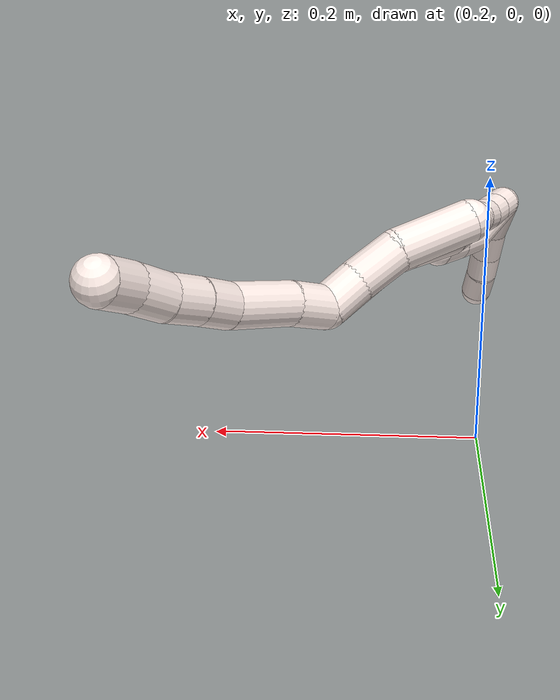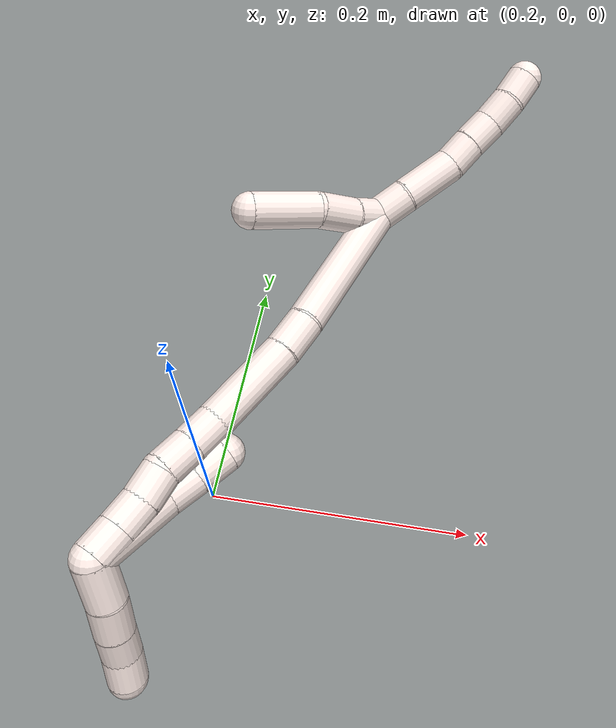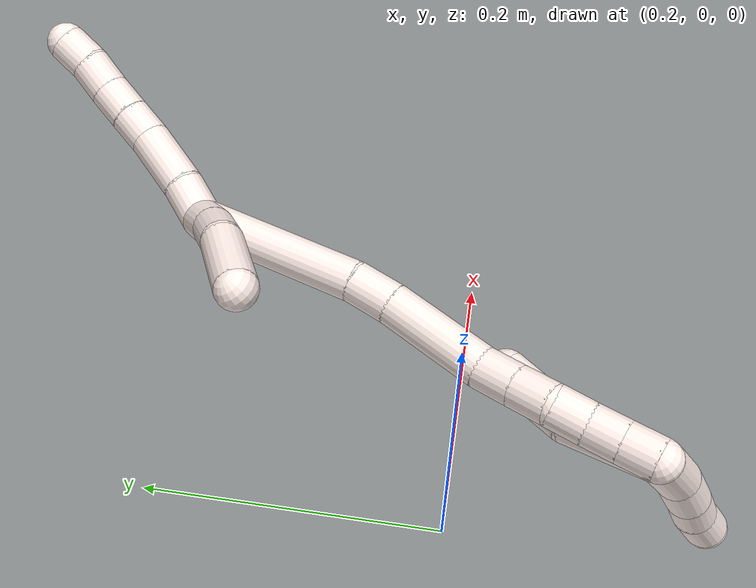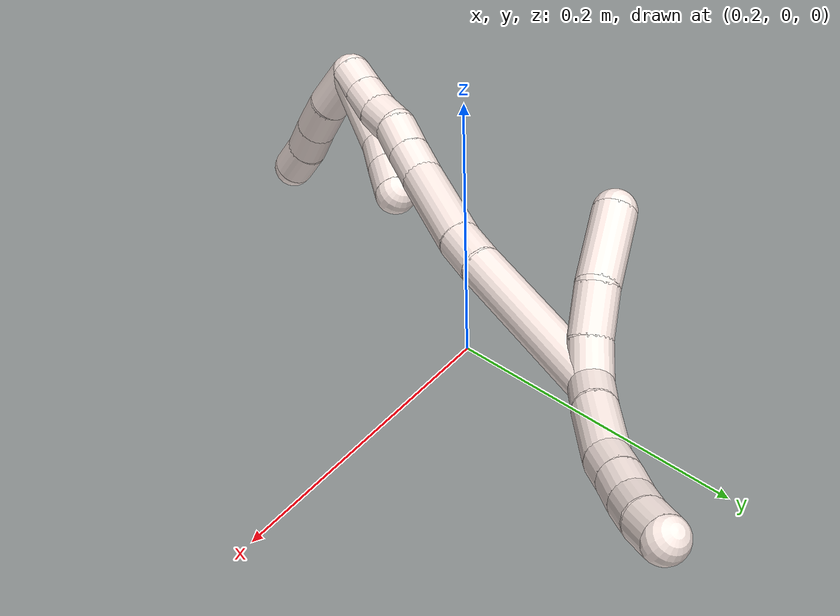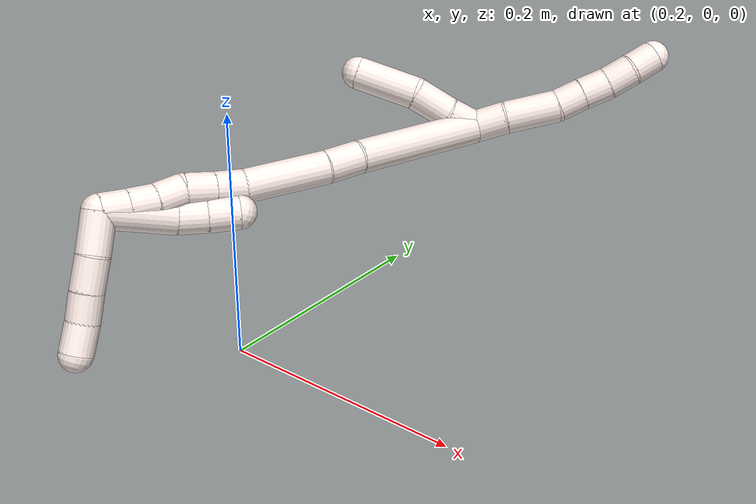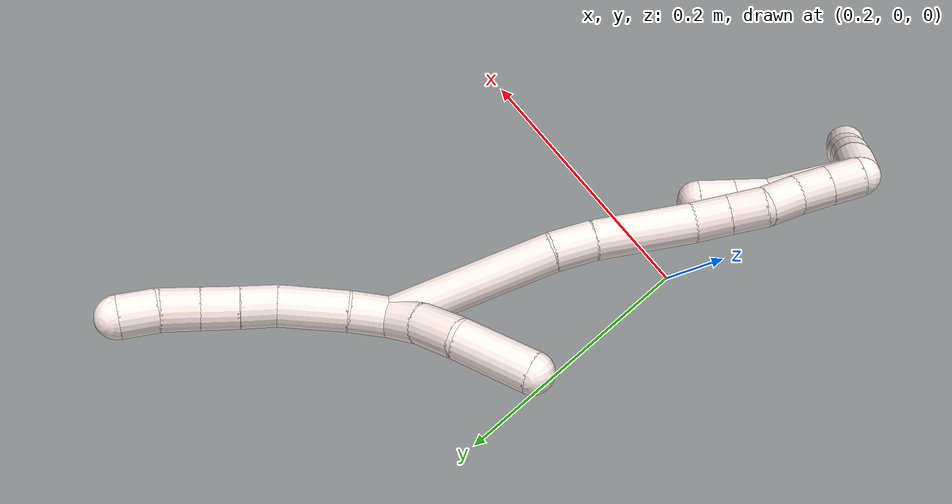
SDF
<sdf version="1.7">
 <world name="default">
  <model name="11">
   <static>0</static>
   <link name="11">
    <collision name="collision-cylinder-e_1_2_8">
     <pose>0.006764 0.008009 0.007009 -0.851843 0.56616 -0.262435</pose>
     <geometry><cylinder><radius>0.0125</radius><length>0.025221</length></cylinder></geometry>
     <surface>
      <friction><ode><mu>1.16</mu><mu2>1.16</mu2><slip1>0</slip1><slip2>0</slip2></ode></friction>
      <contact><ode><kp>1e+06</kp><kd>1</kd><max_vel>0</max_vel><min_depth>0.001</min_depth></ode></contact>
     </surface>
    </collision>
    <visual name="visual-cylinder-e_1_2_8">
     <pose>0.006764 0.008009 0.007009 -0.851843 0.56616 -0.262435</pose>
     <geometry><cylinder><radius>0.0125</radius><length>0.025221</length></cylinder></geometry>
     <material><ambient>1 0.933333 0.909804 1</ambient></material>
    </visual>
    <collision name="collision-cylinder-e_2_8_9">
     <pose>0.023169 0.030822 0.024243 -0.966411 0.491911 -0.261927</pose>
     <geometry><cylinder><radius>0.0125</radius><length>0.040825</length></cylinder></geometry>
     <surface>
      <friction><ode><mu>1.16</mu><mu2>1.16</mu2><slip1>0</slip1><slip2>0</slip2></ode></friction>
      <contact><ode><kp>1e+06</kp><kd>1</kd><max_vel>0</max_vel><min_depth>0.001</min_depth></ode></contact>
     </surface>
    </collision>
    <visual name="visual-cylinder-e_2_8_9">
     <pose>0.023169 0.030822 0.024243 -0.966411 0.491911 -0.261927</pose>
     <geometry><cylinder><radius>0.0125</radius><length>0.040825</length></cylinder></geometry>
     <material><ambient>1 0.933333 0.909804 1</ambient></material>
    </visual>
    <collision name="collision-cylinder-e_3_9_10">
     <pose>0.036617 0.052252 0.041544 -0.752399 0.374185 -0.149279</pose>
     <geometry><cylinder><radius>0.0125</radius><length>0.020828</length></cylinder></geometry>
     <surface>
      <friction><ode><mu>1.16</mu><mu2>1.16</mu2><slip1>0</slip1><slip2>0</slip2></ode></friction>
      <contact><ode><kp>1e+06</kp><kd>1</kd><max_vel>0</max_vel><min_depth>0.001</min_depth></ode></contact>
     </surface>
    </collision>
    <visual name="visual-cylinder-e_3_9_10">
     <pose>0.036617 0.052252 0.041544 -0.752399 0.374185 -0.149279</pose>
     <geometry><cylinder><radius>0.0125</radius><length>0.020828</length></cylinder></geometry>
     <material><ambient>1 0.933333 0.909804 1</ambient></material>
    </visual>
    <collision name="collision-cylinder-e_4_10_11">
     <pose>0.044531 0.065941 0.055532 -0.796359 0.393864 -0.167462</pose>
     <geometry><cylinder><radius>0.0125</radius><length>0.021407</length></cylinder></geometry>
     <surface>
      <friction><ode><mu>1.16</mu><mu2>1.16</mu2><slip1>0</slip1><slip2>0</slip2></ode></friction>
      <contact><ode><kp>1e+06</kp><kd>1</kd><max_vel>0</max_vel><min_depth>0.001</min_depth></ode></contact>
     </surface>
    </collision>
    <visual name="visual-cylinder-e_4_10_11">
     <pose>0.044531 0.065941 0.055532 -0.796359 0.393864 -0.167462</pose>
     <geometry><cylinder><radius>0.0125</radius><length>0.021407</length></cylinder></geometry>
     <material><ambient>1 0.933333 0.909804 1</ambient></material>
    </visual>
    <collision name="collision-cylinder-e_5_11_12">
     <pose>0.052802 0.079024 0.070391 -0.648107 0.39567 -0.134462</pose>
     <geometry><cylinder><radius>0.0125</radius><length>0.021605</length></cylinder></geometry>
     <surface>
      <friction><ode><mu>1.16</mu><mu2>1.16</mu2><slip1>0</slip1><slip2>0</slip2></ode></friction>
      <contact><ode><kp>1e+06</kp><kd>1</kd><max_vel>0</max_vel><min_depth>0.001</min_depth></ode></contact>
     </surface>
    </collision>
    <visual name="visual-cylinder-e_5_11_12">
     <pose>0.052802 0.079024 0.070391 -0.648107 0.39567 -0.134462</pose>
     <geometry><cylinder><radius>0.0125</radius><length>0.021605</length></cylinder></geometry>
     <material><ambient>1 0.933333 0.909804 1</ambient></material>
    </visual>
    <collision name="collision-cylinder-e_6_12_6">
     <pose>0.059415 0.091379 0.085752 -0.707305 0.245988 -0.091209</pose>
     <geometry><cylinder><radius>0.0125</radius><length>0.020114</length></cylinder></geometry>
     <surface>
      <friction><ode><mu>1.16</mu><mu2>1.16</mu2><slip1>0</slip1><slip2>0</slip2></ode></friction>
      <contact><ode><kp>1e+06</kp><kd>1</kd><max_vel>0</max_vel><min_depth>0.001</min_depth></ode></contact>
     </surface>
    </collision>
    <visual name="visual-cylinder-e_6_12_6">
     <pose>0.059415 0.091379 0.085752 -0.707305 0.245988 -0.091209</pose>
     <geometry><cylinder><radius>0.0125</radius><length>0.020114</length></cylinder></geometry>
     <material><ambient>1 0.933333 0.909804 1</ambient></material>
    </visual>
    <collision name="collision-cylinder-e_1_2_13">
     <pose>-0.004238 -0.010731 0.001837 1.40124 -0.371235 -0.314118</pose>
     <geometry><cylinder><radius>0.0125</radius><length>0.023365</length></cylinder></geometry>
     <surface>
      <friction><ode><mu>1.16</mu><mu2>1.16</mu2><slip1>0</slip1><slip2>0</slip2></ode></friction>
      <contact><ode><kp>1e+06</kp><kd>1</kd><max_vel>0</max_vel><min_depth>0.001</min_depth></ode></contact>
     </surface>
    </collision>
    <visual name="visual-cylinder-e_1_2_13">
     <pose>-0.004238 -0.010731 0.001837 1.40124 -0.371235 -0.314118</pose>
     <geometry><cylinder><radius>0.0125</radius><length>0.023365</length></cylinder></geometry>
     <material><ambient>1 0.933333 0.909804 1</ambient></material>
    </visual>
    <collision name="collision-cylinder-e_2_13_14">
     <pose>-0.015306 -0.033957 0.007157 1.299 -0.484663 -0.371119</pose>
     <geometry><cylinder><radius>0.0125</radius><length>0.029321</length></cylinder></geometry>
     <surface>
      <friction><ode><mu>1.16</mu><mu2>1.16</mu2><slip1>0</slip1><slip2>0</slip2></ode></friction>
      <contact><ode><kp>1e+06</kp><kd>1</kd><max_vel>0</max_vel><min_depth>0.001</min_depth></ode></contact>
     </surface>
    </collision>
    <visual name="visual-cylinder-e_2_13_14">
     <pose>-0.015306 -0.033957 0.007157 1.299 -0.484663 -0.371119</pose>
     <geometry><cylinder><radius>0.0125</radius><length>0.029321</length></cylinder></geometry>
     <material><ambient>1 0.933333 0.909804 1</ambient></material>
    </visual>
    <collision name="collision-cylinder-e_3_14_5">
     <pose>-0.036896 -0.064916 0.011607 1.51843 -0.673699 -0.64168</pose>
     <geometry><cylinder><radius>0.0125</radius><length>0.047314</length></cylinder></geometry>
     <surface>
      <friction><ode><mu>1.16</mu><mu2>1.16</mu2><slip1>0</slip1><slip2>0</slip2></ode></friction>
      <contact><ode><kp>1e+06</kp><kd>1</kd><max_vel>0</max_vel><min_depth>0.001</min_depth></ode></contact>
     </surface>
    </collision>
    <visual name="visual-cylinder-e_3_14_5">
     <pose>-0.036896 -0.064916 0.011607 1.51843 -0.673699 -0.64168</pose>
     <geometry><cylinder><radius>0.0125</radius><length>0.047314</length></cylinder></geometry>
     <material><ambient>1 0.933333 0.909804 1</ambient></material>
    </visual>
    <collision name="collision-cylinder-e_1_2_15">
     <pose>-0.00025 -0.046147 -0.024918 2.06591 -0.004765 -0.007988</pose>
     <geometry><cylinder><radius>0.0125</radius><length>0.104891</length></cylinder></geometry>
     <surface>
      <friction><ode><mu>1.16</mu><mu2>1.16</mu2><slip1>0</slip1><slip2>0</slip2></ode></friction>
      <contact><ode><kp>1e+06</kp><kd>1</kd><max_vel>0</max_vel><min_depth>0.001</min_depth></ode></contact>
     </surface>
    </collision>
    <visual name="visual-cylinder-e_1_2_15">
     <pose>-0.00025 -0.046147 -0.024918 2.06591 -0.004765 -0.007988</pose>
     <geometry><cylinder><radius>0.0125</radius><length>0.104891</length></cylinder></geometry>
     <material><ambient>1 0.933333 0.909804 1</ambient></material>
    </visual>
    <collision name="collision-cylinder-e_2_15_16">
     <pose>-0.002055 -0.103241 -0.056895 2.1435 -0.118867 -0.217475</pose>
     <geometry><cylinder><radius>0.0125</radius><length>0.026236</length></cylinder></geometry>
     <surface>
      <friction><ode><mu>1.16</mu><mu2>1.16</mu2><slip1>0</slip1><slip2>0</slip2></ode></friction>
      <contact><ode><kp>1e+06</kp><kd>1</kd><max_vel>0</max_vel><min_depth>0.001</min_depth></ode></contact>
     </surface>
    </collision>
    <visual name="visual-cylinder-e_2_15_16">
     <pose>-0.002055 -0.103241 -0.056895 2.1435 -0.118867 -0.217475</pose>
     <geometry><cylinder><radius>0.0125</radius><length>0.026236</length></cylinder></geometry>
     <material><ambient>1 0.933333 0.909804 1</ambient></material>
    </visual>
    <collision name="collision-cylinder-e_3_16_17">
     <pose>-0.010434 -0.140586 -0.079413 2.10056 -0.219436 -0.379708</pose>
     <geometry><cylinder><radius>0.0125</radius><length>0.062687</length></cylinder></geometry>
     <surface>
      <friction><ode><mu>1.16</mu><mu2>1.16</mu2><slip1>0</slip1><slip2>0</slip2></ode></friction>
      <contact><ode><kp>1e+06</kp><kd>1</kd><max_vel>0</max_vel><min_depth>0.001</min_depth></ode></contact>
     </surface>
    </collision>
    <visual name="visual-cylinder-e_3_16_17">
     <pose>-0.010434 -0.140586 -0.079413 2.10056 -0.219436 -0.379708</pose>
     <geometry><cylinder><radius>0.0125</radius><length>0.062687</length></cylinder></geometry>
     <material><ambient>1 0.933333 0.909804 1</ambient></material>
    </visual>
    <collision name="collision-cylinder-e_4_17_18">
     <pose>-0.018914 -0.177333 -0.098894 1.94147 -0.148163 -0.216094</pose>
     <geometry><cylinder><radius>0.0125</radius><length>0.022451</length></cylinder></geometry>
     <surface>
      <friction><ode><mu>1.16</mu><mu2>1.16</mu2><slip1>0</slip1><slip2>0</slip2></ode></friction>
      <contact><ode><kp>1e+06</kp><kd>1</kd><max_vel>0</max_vel><min_depth>0.001</min_depth></ode></contact>
     </surface>
    </collision>
    <visual name="visual-cylinder-e_4_17_18">
     <pose>-0.018914 -0.177333 -0.098894 1.94147 -0.148163 -0.216094</pose>
     <geometry><cylinder><radius>0.0125</radius><length>0.022451</length></cylinder></geometry>
     <material><ambient>1 0.933333 0.909804 1</ambient></material>
    </visual>
    <collision name="collision-cylinder-e_5_18_19">
     <pose>-0.022257 -0.198071 -0.106465 1.90002 -0.152389 -0.212709</pose>
     <geometry><cylinder><radius>0.0125</radius><length>0.022214</length></cylinder></geometry>
     <surface>
      <friction><ode><mu>1.16</mu><mu2>1.16</mu2><slip1>0</slip1><slip2>0</slip2></ode></friction>
      <contact><ode><kp>1e+06</kp><kd>1</kd><max_vel>0</max_vel><min_depth>0.001</min_depth></ode></contact>
     </surface>
    </collision>
    <visual name="visual-cylinder-e_5_18_19">
     <pose>-0.022257 -0.198071 -0.106465 1.90002 -0.152389 -0.212709</pose>
     <geometry><cylinder><radius>0.0125</radius><length>0.022214</length></cylinder></geometry>
     <material><ambient>1 0.933333 0.909804 1</ambient></material>
    </visual>
    <collision name="collision-cylinder-e_6_19_20">
     <pose>-0.024455 -0.21702 -0.116104 2.18918 -0.048667 -0.094302</pose>
     <geometry><cylinder><radius>0.0125</radius><length>0.021036</length></cylinder></geometry>
     <surface>
      <friction><ode><mu>1.16</mu><mu2>1.16</mu2><slip1>0</slip1><slip2>0</slip2></ode></friction>
      <contact><ode><kp>1e+06</kp><kd>1</kd><max_vel>0</max_vel><min_depth>0.001</min_depth></ode></contact>
     </surface>
    </collision>
    <visual name="visual-cylinder-e_6_19_20">
     <pose>-0.024455 -0.21702 -0.116104 2.18918 -0.048667 -0.094302</pose>
     <geometry><cylinder><radius>0.0125</radius><length>0.021036</length></cylinder></geometry>
     <material><ambient>1 0.933333 0.909804 1</ambient></material>
    </visual>
    <collision name="collision-cylinder-e_7_20_21">
     <pose>-0.025897 -0.234614 -0.126703 2.03366 -0.091887 -0.148379</pose>
     <geometry><cylinder><radius>0.0125</radius><length>0.02028</length></cylinder></geometry>
     <surface>
      <friction><ode><mu>1.16</mu><mu2>1.16</mu2><slip1>0</slip1><slip2>0</slip2></ode></friction>
      <contact><ode><kp>1e+06</kp><kd>1</kd><max_vel>0</max_vel><min_depth>0.001</min_depth></ode></contact>
     </surface>
    </collision>
    <visual name="visual-cylinder-e_7_20_21">
     <pose>-0.025897 -0.234614 -0.126703 2.03366 -0.091887 -0.148379</pose>
     <geometry><cylinder><radius>0.0125</radius><length>0.02028</length></cylinder></geometry>
     <material><ambient>1 0.933333 0.909804 1</ambient></material>
    </visual>
    <collision name="collision-cylinder-e_8_21_1">
     <pose>-0.027773 -0.252792 -0.135403 2.00064 -0.09379 -0.146019</pose>
     <geometry><cylinder><radius>0.0125</radius><length>0.020205</length></cylinder></geometry>
     <surface>
      <friction><ode><mu>1.16</mu><mu2>1.16</mu2><slip1>0</slip1><slip2>0</slip2></ode></friction>
      <contact><ode><kp>1e+06</kp><kd>1</kd><max_vel>0</max_vel><min_depth>0.001</min_depth></ode></contact>
     </surface>
    </collision>
    <visual name="visual-cylinder-e_8_21_1">
     <pose>-0.027773 -0.252792 -0.135403 2.00064 -0.09379 -0.146019</pose>
     <geometry><cylinder><radius>0.0125</radius><length>0.020205</length></cylinder></geometry>
     <material><ambient>1 0.933333 0.909804 1</ambient></material>
    </visual>
    <collision name="collision-cylinder-e_1_1_22">
     <pose>-0.026152 -0.260312 -0.154656 -3.03419 0.167887 -2.00462</pose>
     <geometry><cylinder><radius>0.0125</radius><length>0.030729</length></cylinder></geometry>
     <surface>
      <friction><ode><mu>1.16</mu><mu2>1.16</mu2><slip1>0</slip1><slip2>0</slip2></ode></friction>
      <contact><ode><kp>1e+06</kp><kd>1</kd><max_vel>0</max_vel><min_depth>0.001</min_depth></ode></contact>
     </surface>
    </collision>
    <visual name="visual-cylinder-e_1_1_22">
     <pose>-0.026152 -0.260312 -0.154656 -3.03419 0.167887 -2.00462</pose>
     <geometry><cylinder><radius>0.0125</radius><length>0.030729</length></cylinder></geometry>
     <material><ambient>1 0.933333 0.909804 1</ambient></material>
    </visual>
    <collision name="collision-cylinder-e_2_22_23">
     <pose>-0.0232 -0.257173 -0.18227 -3.02151 0.030436 -0.495937</pose>
     <geometry><cylinder><radius>0.0125</radius><length>0.0253</length></cylinder></geometry>
     <surface>
      <friction><ode><mu>1.16</mu><mu2>1.16</mu2><slip1>0</slip1><slip2>0</slip2></ode></friction>
      <contact><ode><kp>1e+06</kp><kd>1</kd><max_vel>0</max_vel><min_depth>0.001</min_depth></ode></contact>
     </surface>
    </collision>
    <visual name="visual-cylinder-e_2_22_23">
     <pose>-0.0232 -0.257173 -0.18227 -3.02151 0.030436 -0.495937</pose>
     <geometry><cylinder><radius>0.0125</radius><length>0.0253</length></cylinder></geometry>
     <material><ambient>1 0.933333 0.909804 1</ambient></material>
    </visual>
    <collision name="collision-cylinder-e_3_23_24">
     <pose>-0.022657 -0.25387 -0.205345 -2.97327 0.014749 -0.174383</pose>
     <geometry><cylinder><radius>0.0125</radius><length>0.021347</length></cylinder></geometry>
     <surface>
      <friction><ode><mu>1.16</mu><mu2>1.16</mu2><slip1>0</slip1><slip2>0</slip2></ode></friction>
      <contact><ode><kp>1e+06</kp><kd>1</kd><max_vel>0</max_vel><min_depth>0.001</min_depth></ode></contact>
     </surface>
    </collision>
    <visual name="visual-cylinder-e_3_23_24">
     <pose>-0.022657 -0.25387 -0.205345 -2.97327 0.014749 -0.174383</pose>
     <geometry><cylinder><radius>0.0125</radius><length>0.021347</length></cylinder></geometry>
     <material><ambient>1 0.933333 0.909804 1</ambient></material>
    </visual>
    <collision name="collision-cylinder-e_4_24_4">
     <pose>-0.021497 -0.251385 -0.227112 -3.07966 0.088791 -1.92379</pose>
     <geometry><cylinder><radius>0.0125</radius><length>0.022624</length></cylinder></geometry>
     <surface>
      <friction><ode><mu>1.16</mu><mu2>1.16</mu2><slip1>0</slip1><slip2>0</slip2></ode></friction>
      <contact><ode><kp>1e+06</kp><kd>1</kd><max_vel>0</max_vel><min_depth>0.001</min_depth></ode></contact>
     </surface>
    </collision>
    <visual name="visual-cylinder-e_4_24_4">
     <pose>-0.021497 -0.251385 -0.227112 -3.07966 0.088791 -1.92379</pose>
     <geometry><cylinder><radius>0.0125</radius><length>0.022624</length></cylinder></geometry>
     <material><ambient>1 0.933333 0.909804 1</ambient></material>
    </visual>
    <collision name="collision-cylinder-e_1_1_25">
     <pose>-0.025724 -0.235023 -0.134564 -1.38599 0.108995 -0.090535</pose>
     <geometry><cylinder><radius>0.0125</radius><length>0.055083</length></cylinder></geometry>
     <surface>
      <friction><ode><mu>1.16</mu><mu2>1.16</mu2><slip1>0</slip1><slip2>0</slip2></ode></friction>
      <contact><ode><kp>1e+06</kp><kd>1</kd><max_vel>0</max_vel><min_depth>0.001</min_depth></ode></contact>
     </surface>
    </collision>
    <visual name="visual-cylinder-e_1_1_25">
     <pose>-0.025724 -0.235023 -0.134564 -1.38599 0.108995 -0.090535</pose>
     <geometry><cylinder><radius>0.0125</radius><length>0.055083</length></cylinder></geometry>
     <material><ambient>1 0.933333 0.909804 1</ambient></material>
    </visual>
    <collision name="collision-cylinder-e_2_25_26">
     <pose>-0.018998 -0.198426 -0.125697 -1.19372 0.343766 -0.234845</pose>
     <geometry><cylinder><radius>0.0125</radius><length>0.02213</length></cylinder></geometry>
     <surface>
      <friction><ode><mu>1.16</mu><mu2>1.16</mu2><slip1>0</slip1><slip2>0</slip2></ode></friction>
      <contact><ode><kp>1e+06</kp><kd>1</kd><max_vel>0</max_vel><min_depth>0.001</min_depth></ode></contact>
     </surface>
    </collision>
    <visual name="visual-cylinder-e_2_25_26">
     <pose>-0.018998 -0.198426 -0.125697 -1.19372 0.343766 -0.234845</pose>
     <geometry><cylinder><radius>0.0125</radius><length>0.02213</length></cylinder></geometry>
     <material><ambient>1 0.933333 0.909804 1</ambient></material>
    </visual>
    <collision name="collision-cylinder-e_3_26_3">
     <pose>-0.011414 -0.178977 -0.11743 -1.14474 0.345197 -0.223714</pose>
     <geometry><cylinder><radius>0.0125</radius><length>0.022786</length></cylinder></geometry>
     <surface>
      <friction><ode><mu>1.16</mu><mu2>1.16</mu2><slip1>0</slip1><slip2>0</slip2></ode></friction>
      <contact><ode><kp>1e+06</kp><kd>1</kd><max_vel>0</max_vel><min_depth>0.001</min_depth></ode></contact>
     </surface>
    </collision>
    <visual name="visual-cylinder-e_3_26_3">
     <pose>-0.011414 -0.178977 -0.11743 -1.14474 0.345197 -0.223714</pose>
     <geometry><cylinder><radius>0.0125</radius><length>0.022786</length></cylinder></geometry>
     <material><ambient>1 0.933333 0.909804 1</ambient></material>
    </visual>
    <collision name="collision-sphere-3">
     <pose>-0.007558 -0.169214 -0.113 0 -0 0</pose>
     <geometry><sphere><radius>0.0125</radius></sphere></geometry>
     <surface>
      <friction><ode><mu>1.16</mu><mu2>1.16</mu2><slip1>0</slip1><slip2>0</slip2></ode></friction>
      <contact><ode><kp>1e+06</kp><kd>1</kd><max_vel>0</max_vel><min_depth>0.001</min_depth></ode></contact>
     </surface>
    </collision>
    <visual name="visual-sphere-3">
     <pose>-0.007558 -0.169214 -0.113 0 -0 0</pose>
     <geometry><sphere><radius>0.0125</radius></sphere></geometry>
     <material><ambient>1 0.933333 0.909804 1</ambient></material>
    </visual>
    <collision name="collision-sphere-26">
     <pose>-0.015269 -0.18874 -0.121861 0 -0 0</pose>
     <geometry><sphere><radius>0.0125</radius></sphere></geometry>
     <surface>
      <friction><ode><mu>1.16</mu><mu2>1.16</mu2><slip1>0</slip1><slip2>0</slip2></ode></friction>
      <contact><ode><kp>1e+06</kp><kd>1</kd><max_vel>0</max_vel><min_depth>0.001</min_depth></ode></contact>
     </surface>
    </collision>
    <visual name="visual-sphere-26">
     <pose>-0.015269 -0.18874 -0.121861 0 -0 0</pose>
     <geometry><sphere><radius>0.0125</radius></sphere></geometry>
     <material><ambient>1 0.933333 0.909804 1</ambient></material>
    </visual>
    <collision name="collision-sphere-25">
     <pose>-0.022728 -0.208112 -0.129533 0 -0 0</pose>
     <geometry><sphere><radius>0.0125</radius></sphere></geometry>
     <surface>
      <friction><ode><mu>1.16</mu><mu2>1.16</mu2><slip1>0</slip1><slip2>0</slip2></ode></friction>
      <contact><ode><kp>1e+06</kp><kd>1</kd><max_vel>0</max_vel><min_depth>0.001</min_depth></ode></contact>
     </surface>
    </collision>
    <visual name="visual-sphere-25">
     <pose>-0.022728 -0.208112 -0.129533 0 -0 0</pose>
     <geometry><sphere><radius>0.0125</radius></sphere></geometry>
     <material><ambient>1 0.933333 0.909804 1</ambient></material>
    </visual>
    <collision name="collision-sphere-4">
     <pose>-0.020494 -0.250688 -0.238358 0 -0 0</pose>
     <geometry><sphere><radius>0.0125</radius></sphere></geometry>
     <surface>
      <friction><ode><mu>1.16</mu><mu2>1.16</mu2><slip1>0</slip1><slip2>0</slip2></ode></friction>
      <contact><ode><kp>1e+06</kp><kd>1</kd><max_vel>0</max_vel><min_depth>0.001</min_depth></ode></contact>
     </surface>
    </collision>
    <visual name="visual-sphere-4">
     <pose>-0.020494 -0.250688 -0.238358 0 -0 0</pose>
     <geometry><sphere><radius>0.0125</radius></sphere></geometry>
     <material><ambient>1 0.933333 0.909804 1</ambient></material>
    </visual>
    <collision name="collision-sphere-24">
     <pose>-0.0225 -0.252082 -0.215866 0 -0 0</pose>
     <geometry><sphere><radius>0.0125</radius></sphere></geometry>
     <surface>
      <friction><ode><mu>1.16</mu><mu2>1.16</mu2><slip1>0</slip1><slip2>0</slip2></ode></friction>
      <contact><ode><kp>1e+06</kp><kd>1</kd><max_vel>0</max_vel><min_depth>0.001</min_depth></ode></contact>
     </surface>
    </collision>
    <visual name="visual-sphere-24">
     <pose>-0.0225 -0.252082 -0.215866 0 -0 0</pose>
     <geometry><sphere><radius>0.0125</radius></sphere></geometry>
     <material><ambient>1 0.933333 0.909804 1</ambient></material>
    </visual>
    <collision name="collision-sphere-23">
     <pose>-0.022815 -0.255658 -0.194823 0 -0 0</pose>
     <geometry><sphere><radius>0.0125</radius></sphere></geometry>
     <surface>
      <friction><ode><mu>1.16</mu><mu2>1.16</mu2><slip1>0</slip1><slip2>0</slip2></ode></friction>
      <contact><ode><kp>1e+06</kp><kd>1</kd><max_vel>0</max_vel><min_depth>0.001</min_depth></ode></contact>
     </surface>
    </collision>
    <visual name="visual-sphere-23">
     <pose>-0.022815 -0.255658 -0.194823 0 -0 0</pose>
     <geometry><sphere><radius>0.0125</radius></sphere></geometry>
     <material><ambient>1 0.933333 0.909804 1</ambient></material>
    </visual>
    <collision name="collision-sphere-22">
     <pose>-0.023585 -0.258688 -0.169718 0 -0 0</pose>
     <geometry><sphere><radius>0.0125</radius></sphere></geometry>
     <surface>
      <friction><ode><mu>1.16</mu><mu2>1.16</mu2><slip1>0</slip1><slip2>0</slip2></ode></friction>
      <contact><ode><kp>1e+06</kp><kd>1</kd><max_vel>0</max_vel><min_depth>0.001</min_depth></ode></contact>
     </surface>
    </collision>
    <visual name="visual-sphere-22">
     <pose>-0.023585 -0.258688 -0.169718 0 -0 0</pose>
     <geometry><sphere><radius>0.0125</radius></sphere></geometry>
     <material><ambient>1 0.933333 0.909804 1</ambient></material>
    </visual>
    <collision name="collision-sphere-1">
     <pose>-0.02872 -0.261935 -0.139595 0 -0 0</pose>
     <geometry><sphere><radius>0.0125</radius></sphere></geometry>
     <surface>
      <friction><ode><mu>1.16</mu><mu2>1.16</mu2><slip1>0</slip1><slip2>0</slip2></ode></friction>
      <contact><ode><kp>1e+06</kp><kd>1</kd><max_vel>0</max_vel><min_depth>0.001</min_depth></ode></contact>
     </surface>
    </collision>
    <visual name="visual-sphere-1">
     <pose>-0.02872 -0.261935 -0.139595 0 -0 0</pose>
     <geometry><sphere><radius>0.0125</radius></sphere></geometry>
     <material><ambient>1 0.933333 0.909804 1</ambient></material>
    </visual>
    <collision name="collision-sphere-21">
     <pose>-0.026827 -0.243649 -0.131212 0 -0 0</pose>
     <geometry><sphere><radius>0.0125</radius></sphere></geometry>
     <surface>
      <friction><ode><mu>1.16</mu><mu2>1.16</mu2><slip1>0</slip1><slip2>0</slip2></ode></friction>
      <contact><ode><kp>1e+06</kp><kd>1</kd><max_vel>0</max_vel><min_depth>0.001</min_depth></ode></contact>
     </surface>
    </collision>
    <visual name="visual-sphere-21">
     <pose>-0.026827 -0.243649 -0.131212 0 -0 0</pose>
     <geometry><sphere><radius>0.0125</radius></sphere></geometry>
     <material><ambient>1 0.933333 0.909804 1</ambient></material>
    </visual>
    <collision name="collision-sphere-12">
     <pose>0.056966 0.085041 0.078337 0 -0 0</pose>
     <geometry><sphere><radius>0.0125</radius></sphere></geometry>
     <surface>
      <friction><ode><mu>1.16</mu><mu2>1.16</mu2><slip1>0</slip1><slip2>0</slip2></ode></friction>
      <contact><ode><kp>1e+06</kp><kd>1</kd><max_vel>0</max_vel><min_depth>0.001</min_depth></ode></contact>
     </surface>
    </collision>
    <visual name="visual-sphere-12">
     <pose>0.056966 0.085041 0.078337 0 -0 0</pose>
     <geometry><sphere><radius>0.0125</radius></sphere></geometry>
     <material><ambient>1 0.933333 0.909804 1</ambient></material>
    </visual>
    <collision name="collision-sphere-11">
     <pose>0.048638 0.073006 0.062444 0 -0 0</pose>
     <geometry><sphere><radius>0.0125</radius></sphere></geometry>
     <surface>
      <friction><ode><mu>1.16</mu><mu2>1.16</mu2><slip1>0</slip1><slip2>0</slip2></ode></friction>
      <contact><ode><kp>1e+06</kp><kd>1</kd><max_vel>0</max_vel><min_depth>0.001</min_depth></ode></contact>
     </surface>
    </collision>
    <visual name="visual-sphere-11">
     <pose>0.048638 0.073006 0.062444 0 -0 0</pose>
     <geometry><sphere><radius>0.0125</radius></sphere></geometry>
     <material><ambient>1 0.933333 0.909804 1</ambient></material>
    </visual>
    <collision name="collision-sphere-10">
     <pose>0.040423 0.058876 0.04862 0 -0 0</pose>
     <geometry><sphere><radius>0.0125</radius></sphere></geometry>
     <surface>
      <friction><ode><mu>1.16</mu><mu2>1.16</mu2><slip1>0</slip1><slip2>0</slip2></ode></friction>
      <contact><ode><kp>1e+06</kp><kd>1</kd><max_vel>0</max_vel><min_depth>0.001</min_depth></ode></contact>
     </surface>
    </collision>
    <visual name="visual-sphere-10">
     <pose>0.040423 0.058876 0.04862 0 -0 0</pose>
     <geometry><sphere><radius>0.0125</radius></sphere></geometry>
     <material><ambient>1 0.933333 0.909804 1</ambient></material>
    </visual>
    <collision name="collision-sphere-9">
     <pose>0.03281 0.045627 0.034467 0 -0 0</pose>
     <geometry><sphere><radius>0.0125</radius></sphere></geometry>
     <surface>
      <friction><ode><mu>1.16</mu><mu2>1.16</mu2><slip1>0</slip1><slip2>0</slip2></ode></friction>
      <contact><ode><kp>1e+06</kp><kd>1</kd><max_vel>0</max_vel><min_depth>0.001</min_depth></ode></contact>
     </surface>
    </collision>
    <visual name="visual-sphere-9">
     <pose>0.03281 0.045627 0.034467 0 -0 0</pose>
     <geometry><sphere><radius>0.0125</radius></sphere></geometry>
     <material><ambient>1 0.933333 0.909804 1</ambient></material>
    </visual>
    <collision name="collision-sphere-2">
     <geometry><sphere><radius>0.0125</radius></sphere></geometry>
     <surface>
      <friction><ode><mu>1.16</mu><mu2>1.16</mu2><slip1>0</slip1><slip2>0</slip2></ode></friction>
      <contact><ode><kp>1e+06</kp><kd>1</kd><max_vel>0</max_vel><min_depth>0.001</min_depth></ode></contact>
     </surface>
    </collision>
    <visual name="visual-sphere-2">
     <geometry><sphere><radius>0.0125</radius></sphere></geometry>
     <material><ambient>1 0.933333 0.909804 1</ambient></material>
    </visual>
    <collision name="collision-sphere-19">
     <pose>-0.023943 -0.208459 -0.110014 0 -0 0</pose>
     <geometry><sphere><radius>0.0125</radius></sphere></geometry>
     <surface>
      <friction><ode><mu>1.16</mu><mu2>1.16</mu2><slip1>0</slip1><slip2>0</slip2></ode></friction>
      <contact><ode><kp>1e+06</kp><kd>1</kd><max_vel>0</max_vel><min_depth>0.001</min_depth></ode></contact>
     </surface>
    </collision>
    <visual name="visual-sphere-19">
     <pose>-0.023943 -0.208459 -0.110014 0 -0 0</pose>
     <geometry><sphere><radius>0.0125</radius></sphere></geometry>
     <material><ambient>1 0.933333 0.909804 1</ambient></material>
    </visual>
    <collision name="collision-sphere-8">
     <pose>0.013528 0.016017 0.014019 0 -0 0</pose>
     <geometry><sphere><radius>0.0125</radius></sphere></geometry>
     <surface>
      <friction><ode><mu>1.16</mu><mu2>1.16</mu2><slip1>0</slip1><slip2>0</slip2></ode></friction>
      <contact><ode><kp>1e+06</kp><kd>1</kd><max_vel>0</max_vel><min_depth>0.001</min_depth></ode></contact>
     </surface>
    </collision>
    <visual name="visual-sphere-8">
     <pose>0.013528 0.016017 0.014019 0 -0 0</pose>
     <geometry><sphere><radius>0.0125</radius></sphere></geometry>
     <material><ambient>1 0.933333 0.909804 1</ambient></material>
    </visual>
    <collision name="collision-sphere-6">
     <pose>0.061864 0.097718 0.093167 0 -0 0</pose>
     <geometry><sphere><radius>0.0125</radius></sphere></geometry>
     <surface>
      <friction><ode><mu>1.16</mu><mu2>1.16</mu2><slip1>0</slip1><slip2>0</slip2></ode></friction>
      <contact><ode><kp>1e+06</kp><kd>1</kd><max_vel>0</max_vel><min_depth>0.001</min_depth></ode></contact>
     </surface>
    </collision>
    <visual name="visual-sphere-6">
     <pose>0.061864 0.097718 0.093167 0 -0 0</pose>
     <geometry><sphere><radius>0.0125</radius></sphere></geometry>
     <material><ambient>1 0.933333 0.909804 1</ambient></material>
    </visual>
    <collision name="collision-sphere-13">
     <pose>-0.008476 -0.021461 0.003674 0 -0 0</pose>
     <geometry><sphere><radius>0.0125</radius></sphere></geometry>
     <surface>
      <friction><ode><mu>1.16</mu><mu2>1.16</mu2><slip1>0</slip1><slip2>0</slip2></ode></friction>
      <contact><ode><kp>1e+06</kp><kd>1</kd><max_vel>0</max_vel><min_depth>0.001</min_depth></ode></contact>
     </surface>
    </collision>
    <visual name="visual-sphere-13">
     <pose>-0.008476 -0.021461 0.003674 0 -0 0</pose>
     <geometry><sphere><radius>0.0125</radius></sphere></geometry>
     <material><ambient>1 0.933333 0.909804 1</ambient></material>
    </visual>
    <collision name="collision-sphere-14">
     <pose>-0.022137 -0.046453 0.010639 0 -0 0</pose>
     <geometry><sphere><radius>0.0125</radius></sphere></geometry>
     <surface>
      <friction><ode><mu>1.16</mu><mu2>1.16</mu2><slip1>0</slip1><slip2>0</slip2></ode></friction>
      <contact><ode><kp>1e+06</kp><kd>1</kd><max_vel>0</max_vel><min_depth>0.001</min_depth></ode></contact>
     </surface>
    </collision>
    <visual name="visual-sphere-14">
     <pose>-0.022137 -0.046453 0.010639 0 -0 0</pose>
     <geometry><sphere><radius>0.0125</radius></sphere></geometry>
     <material><ambient>1 0.933333 0.909804 1</ambient></material>
    </visual>
    <collision name="collision-sphere-5">
     <pose>-0.051655 -0.083379 0.012575 0 -0 0</pose>
     <geometry><sphere><radius>0.0125</radius></sphere></geometry>
     <surface>
      <friction><ode><mu>1.16</mu><mu2>1.16</mu2><slip1>0</slip1><slip2>0</slip2></ode></friction>
      <contact><ode><kp>1e+06</kp><kd>1</kd><max_vel>0</max_vel><min_depth>0.001</min_depth></ode></contact>
     </surface>
    </collision>
    <visual name="visual-sphere-5">
     <pose>-0.051655 -0.083379 0.012575 0 -0 0</pose>
     <geometry><sphere><radius>0.0125</radius></sphere></geometry>
     <material><ambient>1 0.933333 0.909804 1</ambient></material>
    </visual>
    <collision name="collision-sphere-15">
     <pose>-0.0005 -0.092293 -0.049837 0 -0 0</pose>
     <geometry><sphere><radius>0.0125</radius></sphere></geometry>
     <surface>
      <friction><ode><mu>1.16</mu><mu2>1.16</mu2><slip1>0</slip1><slip2>0</slip2></ode></friction>
      <contact><ode><kp>1e+06</kp><kd>1</kd><max_vel>0</max_vel><min_depth>0.001</min_depth></ode></contact>
     </surface>
    </collision>
    <visual name="visual-sphere-15">
     <pose>-0.0005 -0.092293 -0.049837 0 -0 0</pose>
     <geometry><sphere><radius>0.0125</radius></sphere></geometry>
     <material><ambient>1 0.933333 0.909804 1</ambient></material>
    </visual>
    <collision name="collision-sphere-16">
     <pose>-0.003611 -0.114188 -0.063954 0 -0 0</pose>
     <geometry><sphere><radius>0.0125</radius></sphere></geometry>
     <surface>
      <friction><ode><mu>1.16</mu><mu2>1.16</mu2><slip1>0</slip1><slip2>0</slip2></ode></friction>
      <contact><ode><kp>1e+06</kp><kd>1</kd><max_vel>0</max_vel><min_depth>0.001</min_depth></ode></contact>
     </surface>
    </collision>
    <visual name="visual-sphere-16">
     <pose>-0.003611 -0.114188 -0.063954 0 -0 0</pose>
     <geometry><sphere><radius>0.0125</radius></sphere></geometry>
     <material><ambient>1 0.933333 0.909804 1</ambient></material>
    </visual>
    <collision name="collision-sphere-17">
     <pose>-0.017257 -0.166985 -0.094872 0 -0 0</pose>
     <geometry><sphere><radius>0.0125</radius></sphere></geometry>
     <surface>
      <friction><ode><mu>1.16</mu><mu2>1.16</mu2><slip1>0</slip1><slip2>0</slip2></ode></friction>
      <contact><ode><kp>1e+06</kp><kd>1</kd><max_vel>0</max_vel><min_depth>0.001</min_depth></ode></contact>
     </surface>
    </collision>
    <visual name="visual-sphere-17">
     <pose>-0.017257 -0.166985 -0.094872 0 -0 0</pose>
     <geometry><sphere><radius>0.0125</radius></sphere></geometry>
     <material><ambient>1 0.933333 0.909804 1</ambient></material>
    </visual>
    <collision name="collision-sphere-18">
     <pose>-0.020571 -0.187682 -0.102915 0 -0 0</pose>
     <geometry><sphere><radius>0.0125</radius></sphere></geometry>
     <surface>
      <friction><ode><mu>1.16</mu><mu2>1.16</mu2><slip1>0</slip1><slip2>0</slip2></ode></friction>
      <contact><ode><kp>1e+06</kp><kd>1</kd><max_vel>0</max_vel><min_depth>0.001</min_depth></ode></contact>
     </surface>
    </collision>
    <visual name="visual-sphere-18">
     <pose>-0.020571 -0.187682 -0.102915 0 -0 0</pose>
     <geometry><sphere><radius>0.0125</radius></sphere></geometry>
     <material><ambient>1 0.933333 0.909804 1</ambient></material>
    </visual>
    <collision name="collision-sphere-20">
     <pose>-0.024966 -0.22558 -0.122195 0 -0 0</pose>
     <geometry><sphere><radius>0.0125</radius></sphere></geometry>
     <surface>
      <friction><ode><mu>1.16</mu><mu2>1.16</mu2><slip1>0</slip1><slip2>0</slip2></ode></friction>
      <contact><ode><kp>1e+06</kp><kd>1</kd><max_vel>0</max_vel><min_depth>0.001</min_depth></ode></contact>
     </surface>
    </collision>
    <visual name="visual-sphere-20">
     <pose>-0.024966 -0.22558 -0.122195 0 -0 0</pose>
     <geometry><sphere><radius>0.0125</radius></sphere></geometry>
     <material><ambient>1 0.933333 0.909804 1</ambient></material>
    </visual>
    <inertial>
     <pose>-0.00645 -0.110685 -0.061206 0 -0 0</pose>
     <mass>0.75</mass>
     <inertia>
      <ixx>0.000149</ixx>
      <ixy>0</ixy>
      <ixz>0</ixz>
      <iyy>-8.1e-05</iyy>
      <iyz>0</iyz>
      <izz>9.6e-05</izz>
     </inertia>
    </inertial>
   </link>
   <pose>0.301091 0.165815 0.162363 -0.494466 -0.210741 -0.325141</pose>
  </model>
 </world>
</sdf>
